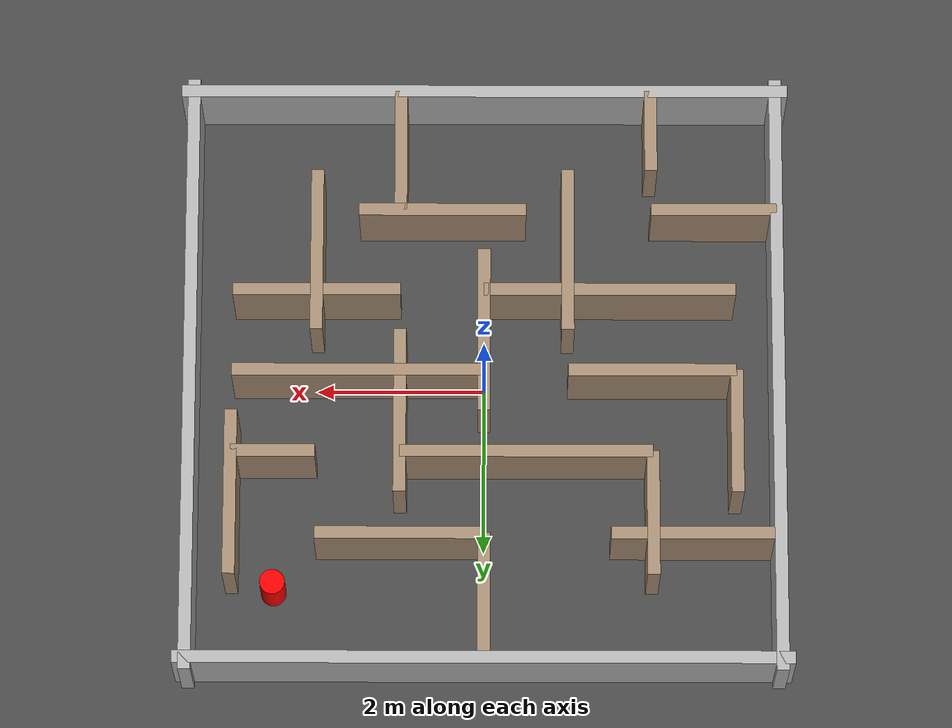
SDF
<?xml version="1.0" ?>
<sdf version="1.6">
  <world name="maze_world">
    <!-- ── IGNITION GAZEBO TEMEL SİSTEMLERİ ── -->
    <plugin filename="libignition-gazebo-physics-system.so" name="ignition::gazebo::systems::Physics"></plugin>
    <plugin filename="libignition-gazebo-user-commands-system.so" name="ignition::gazebo::systems::UserCommands"></plugin>
    <plugin filename="libignition-gazebo-scene-broadcaster-system.so" name="ignition::gazebo::systems::SceneBroadcaster"></plugin>
    <plugin filename="libignition-gazebo-sensors-system.so" name="ignition::gazebo::systems::Sensors">
      <render_engine>ogre2</render_engine>
    </plugin>
    <plugin filename="libignition-gazebo-contact-system.so" name="ignition::gazebo::systems::Contact"></plugin>

    <!-- ── IŞIK (inline - internet bağlantısı gerektirmez) ──── -->
    <light name="sun" type="directional">
      <cast_shadows>true</cast_shadows>
      <pose>0 0 10 0 0 0</pose>
      <diffuse>0.9 0.9 0.9 1</diffuse>
      <specular>0.3 0.3 0.3 1</specular>
      <attenuation>
        <range>1000</range>
        <constant>0.9</constant>
        <linear>0.01</linear>
        <quadratic>0.001</quadratic>
      </attenuation>
      <direction>-0.5 0.1 -0.9</direction>
    </light>

    <!-- ── ZEMİN (inline) ────────────────────────────────────── -->
    <model name="ground_plane">
      <static>true</static>
      <link name="link">
        <collision name="collision">
          <geometry>
            <plane>
              <normal>0 0 1</normal>
              <size>20 20</size>
            </plane>
          </geometry>
          <surface>
            <friction><ode><mu>100</mu><mu2>50</mu2></ode></friction>
          </surface>
        </collision>
        <visual name="visual">
          <cast_shadows>false</cast_shadows>
          <geometry>
            <plane>
              <normal>0 0 1</normal>
              <size>20 20</size>
            </plane>
          </geometry>
          <material>
            <ambient>0.22 0.22 0.22 1</ambient>
            <diffuse>0.28 0.28 0.28 1</diffuse>
          </material>
        </visual>
      </link>
    </model>

    <!-- ── GUI AYARLARI (Kamera Başlangıç Pozisyonu) ───────── -->
    <gui fullscreen='0'>
      <camera name='user_camera'>
        <pose>0.0 -12.0 15.0 0 0.9 1.57</pose>
        <view_controller>orbit</view_controller>
        <projection_type>perspective</projection_type>
      </camera>
    </gui>

    <physics name="1ms" type="ignored">
      <max_step_size>0.001</max_step_size>
      <real_time_factor>1.0</real_time_factor>
    </physics>

    <!-- ── LABIRENT DUVARLARI ───────────────────────────────── -->

    <!-- Dış Çevre Duvarları -->
    <!-- Güney duvarı (alt) -->
    <model name="wall_south">
      <static>true</static>
      <pose>0 -3.5 0.5 0 0 0</pose>
      <link name="link">
        <collision name="collision">
          <geometry><box><size>7.3 0.15 1.0</size></box></geometry>
        </collision>
        <visual name="visual">
          <geometry><box><size>7.3 0.15 1.0</size></box></geometry>
          <material>
            <ambient>0.6 0.6 0.6 1</ambient>
            <diffuse>0.7 0.7 0.7 1</diffuse>
          </material>
        </visual>
      </link>
    </model>

    <!-- Kuzey duvarı (üst) -->
    <model name="wall_north">
      <static>true</static>
      <pose>0 3.5 0.5 0 0 0</pose>
      <link name="link">
        <collision name="collision">
          <geometry><box><size>7.3 0.15 1.0</size></box></geometry>
        </collision>
        <visual name="visual">
          <geometry><box><size>7.3 0.15 1.0</size></box></geometry>
          <material>
            <ambient>0.6 0.6 0.6 1</ambient>
            <diffuse>0.7 0.7 0.7 1</diffuse>
          </material>
        </visual>
      </link>
    </model>

    <!-- Batı duvarı (sol) -->
    <model name="wall_west">
      <static>true</static>
      <pose>-3.5 0 0.5 0 0 0</pose>
      <link name="link">
        <collision name="collision">
          <geometry><box><size>0.15 7.3 1.0</size></box></geometry>
        </collision>
        <visual name="visual">
          <geometry><box><size>0.15 7.3 1.0</size></box></geometry>
          <material>
            <ambient>0.6 0.6 0.6 1</ambient>
            <diffuse>0.7 0.7 0.7 1</diffuse>
          </material>
        </visual>
      </link>
    </model>

    <!-- Doğu duvarı (sağ) -->
    <model name="wall_east">
      <static>true</static>
      <pose>3.5 0 0.5 0 0 0</pose>
      <link name="link">
        <collision name="collision">
          <geometry><box><size>0.15 7.3 1.0</size></box></geometry>
        </collision>
        <visual name="visual">
          <geometry><box><size>0.15 7.3 1.0</size></box></geometry>
          <material>
            <ambient>0.6 0.6 0.6 1</ambient>
            <diffuse>0.7 0.7 0.7 1</diffuse>
          </material>
        </visual>
      </link>
    </model>

    <!-- ── İÇ LABIRENT DUVARLARI (7x7 Grid) ─────────────────── -->
    <!--
      Çözüm yolu: (0,0) → (1,0) → (1,1) → (1,2) → (2,2) →
                  (2,3) → (3,3) → (3,4) → (4,4) → (5,4) → (5,5)
      Duvarlar bu yolun dışındaki boşlukları kapatır.
    -->

    <!-- Yatay iç duvarlar -->
    <model name="h_wall_1">
      <static>true</static>
      <pose>-2.75 -2.0 0.5 0 0 0</pose>
      <link name="link">
        <collision name="collision">
          <geometry><box><size>1.5 0.15 1.0</size></box></geometry>
        </collision>
        <visual name="visual">
          <geometry><box><size>1.5 0.15 1.0</size></box></geometry>
          <material><ambient>0.55 0.45 0.35 1</ambient><diffuse>0.65 0.55 0.45 1</diffuse></material>
        </visual>
      </link>
    </model>

    <model name="h_wall_2">
      <static>true</static>
      <pose>0.5 -2.0 0.5 0 0 0</pose>
      <link name="link">
        <collision name="collision">
          <geometry><box><size>2.0 0.15 1.0</size></box></geometry>
        </collision>
        <visual name="visual">
          <geometry><box><size>2.0 0.15 1.0</size></box></geometry>
          <material><ambient>0.55 0.45 0.35 1</ambient><diffuse>0.65 0.55 0.45 1</diffuse></material>
        </visual>
      </link>
    </model>

    <model name="h_wall_3">
      <static>true</static>
      <pose>-1.5 -1.0 0.5 0 0 0</pose>
      <link name="link">
        <collision name="collision">
          <geometry><box><size>3.0 0.15 1.0</size></box></geometry>
        </collision>
        <visual name="visual">
          <geometry><box><size>3.0 0.15 1.0</size></box></geometry>
          <material><ambient>0.55 0.45 0.35 1</ambient><diffuse>0.65 0.55 0.45 1</diffuse></material>
        </visual>
      </link>
    </model>

    <model name="h_wall_4">
      <static>true</static>
      <pose>2.0 -1.0 0.5 0 0 0</pose>
      <link name="link">
        <collision name="collision">
          <geometry><box><size>2.0 0.15 1.0</size></box></geometry>
        </collision>
        <visual name="visual">
          <geometry><box><size>2.0 0.15 1.0</size></box></geometry>
          <material><ambient>0.55 0.45 0.35 1</ambient><diffuse>0.65 0.55 0.45 1</diffuse></material>
        </visual>
      </link>
    </model>

    <model name="h_wall_5">
      <static>true</static>
      <pose>-2.0 0.0 0.5 0 0 0</pose>
      <link name="link">
        <collision name="collision">
          <geometry><box><size>2.0 0.15 1.0</size></box></geometry>
        </collision>
        <visual name="visual">
          <geometry><box><size>2.0 0.15 1.0</size></box></geometry>
          <material><ambient>0.55 0.45 0.35 1</ambient><diffuse>0.65 0.55 0.45 1</diffuse></material>
        </visual>
      </link>
    </model>

    <model name="h_wall_6">
      <static>true</static>
      <pose>1.5 0.0 0.5 0 0 0</pose>
      <link name="link">
        <collision name="collision">
          <geometry><box><size>3.0 0.15 1.0</size></box></geometry>
        </collision>
        <visual name="visual">
          <geometry><box><size>3.0 0.15 1.0</size></box></geometry>
          <material><ambient>0.55 0.45 0.35 1</ambient><diffuse>0.65 0.55 0.45 1</diffuse></material>
        </visual>
      </link>
    </model>

    <model name="h_wall_7">
      <static>true</static>
      <pose>-0.5 1.0 0.5 0 0 0</pose>
      <link name="link">
        <collision name="collision">
          <geometry><box><size>3.0 0.15 1.0</size></box></geometry>
        </collision>
        <visual name="visual">
          <geometry><box><size>3.0 0.15 1.0</size></box></geometry>
          <material><ambient>0.55 0.45 0.35 1</ambient><diffuse>0.65 0.55 0.45 1</diffuse></material>
        </visual>
      </link>
    </model>

    <model name="h_wall_8">
      <static>true</static>
      <pose>2.5 1.0 0.5 0 0 0</pose>
      <link name="link">
        <collision name="collision">
          <geometry><box><size>1.0 0.15 1.0</size></box></geometry>
        </collision>
        <visual name="visual">
          <geometry><box><size>1.0 0.15 1.0</size></box></geometry>
          <material><ambient>0.55 0.45 0.35 1</ambient><diffuse>0.65 0.55 0.45 1</diffuse></material>
        </visual>
      </link>
    </model>

    <model name="h_wall_9">
      <static>true</static>
      <pose>-2.5 2.0 0.5 0 0 0</pose>
      <link name="link">
        <collision name="collision">
          <geometry><box><size>2.0 0.15 1.0</size></box></geometry>
        </collision>
        <visual name="visual">
          <geometry><box><size>2.0 0.15 1.0</size></box></geometry>
          <material><ambient>0.55 0.45 0.35 1</ambient><diffuse>0.65 0.55 0.45 1</diffuse></material>
        </visual>
      </link>
    </model>

    <model name="h_wall_10">
      <static>true</static>
      <pose>1.0 2.0 0.5 0 0 0</pose>
      <link name="link">
        <collision name="collision">
          <geometry><box><size>2.0 0.15 1.0</size></box></geometry>
        </collision>
        <visual name="visual">
          <geometry><box><size>2.0 0.15 1.0</size></box></geometry>
          <material><ambient>0.55 0.45 0.35 1</ambient><diffuse>0.65 0.55 0.45 1</diffuse></material>
        </visual>
      </link>
    </model>

    <!-- Dikey iç duvarlar -->
    <model name="v_wall_1">
      <static>true</static>
      <pose>-2.0 -3.0 0.5 0 0 0</pose>
      <link name="link">
        <collision name="collision">
          <geometry><box><size>0.15 1.0 1.0</size></box></geometry>
        </collision>
        <visual name="visual">
          <geometry><box><size>0.15 1.0 1.0</size></box></geometry>
          <material><ambient>0.55 0.45 0.35 1</ambient><diffuse>0.65 0.55 0.45 1</diffuse></material>
        </visual>
      </link>
    </model>

    <model name="v_wall_2">
      <static>true</static>
      <pose>1.0 -2.75 0.5 0 0 0</pose>
      <link name="link">
        <collision name="collision">
          <geometry><box><size>0.15 1.5 1.0</size></box></geometry>
        </collision>
        <visual name="visual">
          <geometry><box><size>0.15 1.5 1.0</size></box></geometry>
          <material><ambient>0.55 0.45 0.35 1</ambient><diffuse>0.65 0.55 0.45 1</diffuse></material>
        </visual>
      </link>
    </model>

    <model name="v_wall_3">
      <static>true</static>
      <pose>-1.0 -1.5 0.5 0 0 0</pose>
      <link name="link">
        <collision name="collision">
          <geometry><box><size>0.15 2.0 1.0</size></box></geometry>
        </collision>
        <visual name="visual">
          <geometry><box><size>0.15 2.0 1.0</size></box></geometry>
          <material><ambient>0.55 0.45 0.35 1</ambient><diffuse>0.65 0.55 0.45 1</diffuse></material>
        </visual>
      </link>
    </model>

    <model name="v_wall_4">
      <static>true</static>
      <pose>2.0 -1.5 0.5 0 0 0</pose>
      <link name="link">
        <collision name="collision">
          <geometry><box><size>0.15 2.0 1.0</size></box></geometry>
        </collision>
        <visual name="visual">
          <geometry><box><size>0.15 2.0 1.0</size></box></geometry>
          <material><ambient>0.55 0.45 0.35 1</ambient><diffuse>0.65 0.55 0.45 1</diffuse></material>
        </visual>
      </link>
    </model>

    <model name="v_wall_5">
      <static>true</static>
      <pose>0.0 -0.5 0.5 0 0 0</pose>
      <link name="link">
        <collision name="collision">
          <geometry><box><size>0.15 2.0 1.0</size></box></geometry>
        </collision>
        <visual name="visual">
          <geometry><box><size>0.15 2.0 1.0</size></box></geometry>
          <material><ambient>0.55 0.45 0.35 1</ambient><diffuse>0.65 0.55 0.45 1</diffuse></material>
        </visual>
      </link>
    </model>

    <model name="v_wall_6">
      <static>true</static>
      <pose>-3.0 0.75 0.5 0 0 0</pose>
      <link name="link">
        <collision name="collision">
          <geometry><box><size>0.15 1.5 1.0</size></box></geometry>
        </collision>
        <visual name="visual">
          <geometry><box><size>0.15 1.5 1.0</size></box></geometry>
          <material><ambient>0.55 0.45 0.35 1</ambient><diffuse>0.65 0.55 0.45 1</diffuse></material>
        </visual>
      </link>
    </model>

    <model name="v_wall_7">
      <static>true</static>
      <pose>1.0 0.5 0.5 0 0 0</pose>
      <link name="link">
        <collision name="collision">
          <geometry><box><size>0.15 2.0 1.0</size></box></geometry>
        </collision>
        <visual name="visual">
          <geometry><box><size>0.15 2.0 1.0</size></box></geometry>
          <material><ambient>0.55 0.45 0.35 1</ambient><diffuse>0.65 0.55 0.45 1</diffuse></material>
        </visual>
      </link>
    </model>

    <model name="v_wall_8">
      <static>true</static>
      <pose>-2.0 1.75 0.5 0 0 0</pose>
      <link name="link">
        <collision name="collision">
          <geometry><box><size>0.15 1.5 1.0</size></box></geometry>
        </collision>
        <visual name="visual">
          <geometry><box><size>0.15 1.5 1.0</size></box></geometry>
          <material><ambient>0.55 0.45 0.35 1</ambient><diffuse>0.65 0.55 0.45 1</diffuse></material>
        </visual>
      </link>
    </model>

    <model name="v_wall_9">
      <static>true</static>
      <pose>3.0 1.5 0.5 0 0 0</pose>
      <link name="link">
        <collision name="collision">
          <geometry><box><size>0.15 2.0 1.0</size></box></geometry>
        </collision>
        <visual name="visual">
          <geometry><box><size>0.15 2.0 1.0</size></box></geometry>
          <material><ambient>0.55 0.45 0.35 1</ambient><diffuse>0.65 0.55 0.45 1</diffuse></material>
        </visual>
      </link>
    </model>

    <model name="v_wall_10">
      <static>true</static>
      <pose>0.0 2.75 0.5 0 0 0</pose>
      <link name="link">
        <collision name="collision">
          <geometry><box><size>0.15 1.5 1.0</size></box></geometry>
        </collision>
        <visual name="visual">
          <geometry><box><size>0.15 1.5 1.0</size></box></geometry>
          <material><ambient>0.55 0.45 0.35 1</ambient><diffuse>0.65 0.55 0.45 1</diffuse></material>
        </visual>
      </link>
    </model>

    <!-- ── HEDEF MARKER (GOAL) ──────────────────────────────── -->
    <model name="goal_marker">
      <static>true</static>
      <pose>2.5 2.5 0.3 0 0 0</pose>
      <link name="link">
        <collision name="collision">
          <geometry>
            <cylinder>
              <radius>0.15</radius>
              <length>0.6</length>
            </cylinder>
          </geometry>
        </collision>
        <visual name="visual">
          <geometry>
            <cylinder>
              <radius>0.15</radius>
              <length>0.6</length>
            </cylinder>
          </geometry>
          <material>
            <!-- Parlak kırmızı - hedef -->
            <ambient>1.0 0.1 0.1 1</ambient>
            <diffuse>1.0 0.0 0.0 1</diffuse>
            <specular>0.5 0.5 0.5 1</specular>
            <emissive>0.3 0.0 0.0 1</emissive>
          </material>
        </visual>
      </link>
    </model>

    <!-- Hedef üstüne ışık (spotlight) -->
    <light name="goal_light" type="spot">
      <pose>2.5 2.5 2.0 0 0 0</pose>
      <diffuse>1 0.3 0.3 1</diffuse>
      <specular>0.5 0.1 0.1 1</specular>
      <attenuation>
        <range>3</range>
        <linear>0.1</linear>
        <quadratic>0.01</quadratic>
      </attenuation>
      <direction>0 0 -1</direction>
      <spot>
        <inner_angle>0.6</inner_angle>
        <outer_angle>1.0</outer_angle>
        <falloff>1.0</falloff>
      </spot>
      <cast_shadows>false</cast_shadows>
    </light>

    <!-- ── ROBOT SPAWN NOKTASI ─────────────────────────────── -->

  </world>
</sdf>
